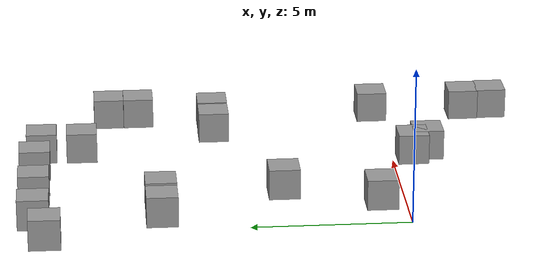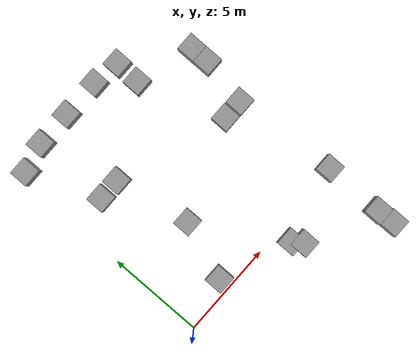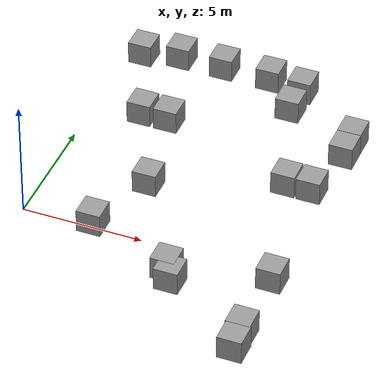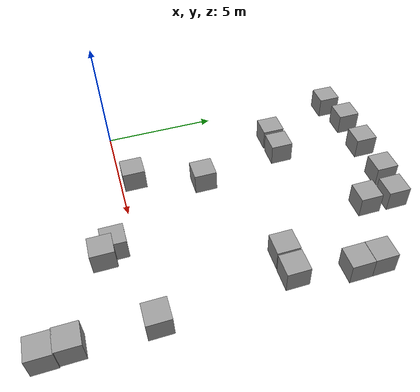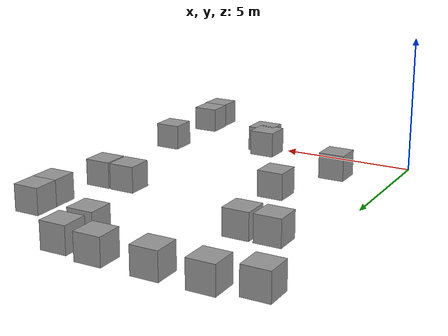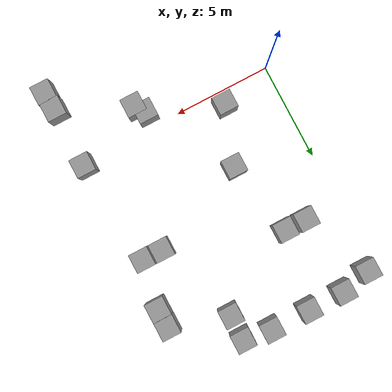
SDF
<sdf version="1.7">
 <model name="21">
  <link name="link_0">
   <inertial>
    <mass>1</mass>
    <inertia>
     <ixx>0.166667</ixx>
     <ixy>0</ixy>
     <ixz>0</ixz>
     <iyy>0.166667</iyy>
     <iyz>0</iyz>
     <izz>0.166667</izz>
    </inertia>
   </inertial>
   <pose>7.34424 10.0959 0 0 -0 0</pose>
   <visual name="visual">
    <geometry><box><size>1 1 1</size></box></geometry>
    <material>
     <lighting>1</lighting>
     <script><uri>file://media/materials/scripts/gazebo.material</uri><name>Gazebo/Grey</name></script>
     <shader type="pixel"/>
    </material>
   </visual>
   <collision name="collision">
    <geometry><box><size>1 1 1</size></box></geometry>
    <surface>
     <friction>
      <ode><mu>1</mu><mu2>1</mu2><fdir1>0 0 0</fdir1><slip1>0</slip1><slip2>0</slip2></ode>
      <torsional>
       <coefficient>1</coefficient>
       <patch_radius>0</patch_radius>
       <surface_radius>0</surface_radius>
       <use_patch_radius>1</use_patch_radius>
       <ode><slip>0</slip></ode>
      </torsional>
     </friction>
     <bounce><restitution_coefficient>0</restitution_coefficient><threshold>1e+06</threshold></bounce>
     <contact>
      <collide_without_contact>0</collide_without_contact>
      <collide_without_contact_bitmask>1</collide_without_contact_bitmask>
      <collide_bitmask>1</collide_bitmask>
      <ode>
       <soft_cfm>0</soft_cfm>
       <soft_erp>0.2</soft_erp>
       <kp>1e+13</kp>
       <kd>1</kd>
       <max_vel>0.01</max_vel>
       <min_depth>0</min_depth>
      </ode>
      <bullet>
       <split_impulse>1</split_impulse>
       <split_impulse_penetration_threshold>-0.01</split_impulse_penetration_threshold>
       <soft_cfm>0</soft_cfm>
       <soft_erp>0.2</soft_erp>
       <kp>1e+13</kp>
       <kd>1</kd>
      </bullet>
     </contact>
    </surface>
   </collision>
  </link>
  <link name="link_1">
   <inertial>
    <mass>1</mass>
    <inertia>
     <ixx>0.166667</ixx>
     <ixy>0</ixy>
     <ixz>0</ixz>
     <iyy>0.166667</iyy>
     <iyz>0</iyz>
     <izz>0.166667</izz>
    </inertia>
   </inertial>
   <pose>10.3682 9.14937 0 0 -0 0</pose>
   <visual name="visual">
    <geometry><box><size>1 1 1</size></box></geometry>
    <material>
     <lighting>1</lighting>
     <script><uri>file://media/materials/scripts/gazebo.material</uri><name>Gazebo/Grey</name></script>
     <shader type="pixel"/>
    </material>
   </visual>
   <collision name="collision">
    <geometry><box><size>1 1 1</size></box></geometry>
    <surface>
     <friction>
      <ode><mu>1</mu><mu2>1</mu2><fdir1>0 0 0</fdir1><slip1>0</slip1><slip2>0</slip2></ode>
      <torsional>
       <coefficient>1</coefficient>
       <patch_radius>0</patch_radius>
       <surface_radius>0</surface_radius>
       <use_patch_radius>1</use_patch_radius>
       <ode><slip>0</slip></ode>
      </torsional>
     </friction>
     <bounce><restitution_coefficient>0</restitution_coefficient><threshold>1e+06</threshold></bounce>
     <contact>
      <collide_without_contact>0</collide_without_contact>
      <collide_without_contact_bitmask>1</collide_without_contact_bitmask>
      <collide_bitmask>1</collide_bitmask>
      <ode>
       <soft_cfm>0</soft_cfm>
       <soft_erp>0.2</soft_erp>
       <kp>1e+13</kp>
       <kd>1</kd>
       <max_vel>0.01</max_vel>
       <min_depth>0</min_depth>
      </ode>
      <bullet>
       <split_impulse>1</split_impulse>
       <split_impulse_penetration_threshold>-0.01</split_impulse_penetration_threshold>
       <soft_cfm>0</soft_cfm>
       <soft_erp>0.2</soft_erp>
       <kp>1e+13</kp>
       <kd>1</kd>
      </bullet>
     </contact>
    </surface>
   </collision>
  </link>
  <link name="link_2">
   <inertial>
    <mass>1</mass>
    <inertia>
     <ixx>0.166667</ixx>
     <ixy>0</ixy>
     <ixz>0</ixz>
     <iyy>0.166667</iyy>
     <iyz>0</iyz>
     <izz>0.166667</izz>
    </inertia>
   </inertial>
   <pose>10.3714 8.14523 0 0 -0 0</pose>
   <visual name="visual">
    <geometry><box><size>1 1 1</size></box></geometry>
    <material>
     <lighting>1</lighting>
     <script><uri>file://media/materials/scripts/gazebo.material</uri><name>Gazebo/Grey</name></script>
     <shader type="pixel"/>
    </material>
   </visual>
   <collision name="collision">
    <geometry><box><size>1 1 1</size></box></geometry>
    <surface>
     <friction>
      <ode><mu>1</mu><mu2>1</mu2><fdir1>0 0 0</fdir1><slip1>0</slip1><slip2>0</slip2></ode>
      <torsional>
       <coefficient>1</coefficient>
       <patch_radius>0</patch_radius>
       <surface_radius>0</surface_radius>
       <use_patch_radius>1</use_patch_radius>
       <ode><slip>0</slip></ode>
      </torsional>
     </friction>
     <bounce><restitution_coefficient>0</restitution_coefficient><threshold>1e+06</threshold></bounce>
     <contact>
      <collide_without_contact>0</collide_without_contact>
      <collide_without_contact_bitmask>1</collide_without_contact_bitmask>
      <collide_bitmask>1</collide_bitmask>
      <ode>
       <soft_cfm>0</soft_cfm>
       <soft_erp>0.2</soft_erp>
       <kp>1e+13</kp>
       <kd>1</kd>
       <max_vel>0.01</max_vel>
       <min_depth>0</min_depth>
      </ode>
      <bullet>
       <split_impulse>1</split_impulse>
       <split_impulse_penetration_threshold>-0.01</split_impulse_penetration_threshold>
       <soft_cfm>0</soft_cfm>
       <soft_erp>0.2</soft_erp>
       <kp>1e+13</kp>
       <kd>1</kd>
      </bullet>
     </contact>
    </surface>
   </collision>
  </link>
  <link name="link_3">
   <inertial>
    <mass>1</mass>
    <inertia>
     <ixx>0.166667</ixx>
     <ixy>0</ixy>
     <ixz>0</ixz>
     <iyy>0.166667</iyy>
     <iyz>0</iyz>
     <izz>0.166667</izz>
    </inertia>
   </inertial>
   <pose>9.92416 5.64013 0 0 -0 0</pose>
   <visual name="visual">
    <geometry><box><size>1 1 1</size></box></geometry>
    <material>
     <lighting>1</lighting>
     <script><uri>file://media/materials/scripts/gazebo.material</uri><name>Gazebo/Grey</name></script>
     <shader type="pixel"/>
    </material>
   </visual>
   <collision name="collision">
    <geometry><box><size>1 1 1</size></box></geometry>
    <surface>
     <friction>
      <ode><mu>1</mu><mu2>1</mu2><fdir1>0 0 0</fdir1><slip1>0</slip1><slip2>0</slip2></ode>
      <torsional>
       <coefficient>1</coefficient>
       <patch_radius>0</patch_radius>
       <surface_radius>0</surface_radius>
       <use_patch_radius>1</use_patch_radius>
       <ode><slip>0</slip></ode>
      </torsional>
     </friction>
     <bounce><restitution_coefficient>0</restitution_coefficient><threshold>1e+06</threshold></bounce>
     <contact>
      <collide_without_contact>0</collide_without_contact>
      <collide_without_contact_bitmask>1</collide_without_contact_bitmask>
      <collide_bitmask>1</collide_bitmask>
      <ode>
       <soft_cfm>0</soft_cfm>
       <soft_erp>0.2</soft_erp>
       <kp>1e+13</kp>
       <kd>1</kd>
       <max_vel>0.01</max_vel>
       <min_depth>0</min_depth>
      </ode>
      <bullet>
       <split_impulse>1</split_impulse>
       <split_impulse_penetration_threshold>-0.01</split_impulse_penetration_threshold>
       <soft_cfm>0</soft_cfm>
       <soft_erp>0.2</soft_erp>
       <kp>1e+13</kp>
       <kd>1</kd>
      </bullet>
     </contact>
    </surface>
   </collision>
  </link>
  <link name="link_37">
   <inertial>
    <mass>1</mass>
    <inertia>
     <ixx>0.166667</ixx>
     <ixy>0</ixy>
     <ixz>0</ixz>
     <iyy>0.166667</iyy>
     <iyz>0</iyz>
     <izz>0.166667</izz>
    </inertia>
   </inertial>
   <pose>10.3566 -3.02952 0 0 -0 0</pose>
   <visual name="visual">
    <geometry><box><size>1 1 1</size></box></geometry>
    <material>
     <lighting>1</lighting>
     <script><uri>file://media/materials/scripts/gazebo.material</uri><name>Gazebo/Grey</name></script>
     <shader type="pixel"/>
    </material>
   </visual>
   <collision name="collision">
    <geometry><box><size>1 1 1</size></box></geometry>
    <surface>
     <friction>
      <ode><mu>1</mu><mu2>1</mu2><fdir1>0 0 0</fdir1><slip1>0</slip1><slip2>0</slip2></ode>
      <torsional>
       <coefficient>1</coefficient>
       <patch_radius>0</patch_radius>
       <surface_radius>0</surface_radius>
       <use_patch_radius>1</use_patch_radius>
       <ode><slip>0</slip></ode>
      </torsional>
     </friction>
     <bounce><restitution_coefficient>0</restitution_coefficient><threshold>1e+06</threshold></bounce>
     <contact>
      <collide_without_contact>0</collide_without_contact>
      <collide_without_contact_bitmask>1</collide_without_contact_bitmask>
      <collide_bitmask>1</collide_bitmask>
      <ode>
       <soft_cfm>0</soft_cfm>
       <soft_erp>0.2</soft_erp>
       <kp>1e+13</kp>
       <kd>1</kd>
       <max_vel>0.01</max_vel>
       <min_depth>0</min_depth>
      </ode>
      <bullet>
       <split_impulse>1</split_impulse>
       <split_impulse_penetration_threshold>-0.01</split_impulse_penetration_threshold>
       <soft_cfm>0</soft_cfm>
       <soft_erp>0.2</soft_erp>
       <kp>1e+13</kp>
       <kd>1</kd>
      </bullet>
     </contact>
    </surface>
   </collision>
  </link>
  <link name="link_38">
   <inertial>
    <mass>1</mass>
    <inertia>
     <ixx>0.166667</ixx>
     <ixy>0</ixy>
     <ixz>0</ixz>
     <iyy>0.166667</iyy>
     <iyz>0</iyz>
     <izz>0.166667</izz>
    </inertia>
   </inertial>
   <pose>10.4017 -3.99565 0 0 -0 0</pose>
   <visual name="visual">
    <geometry><box><size>1 1 1</size></box></geometry>
    <material>
     <lighting>1</lighting>
     <script><uri>file://media/materials/scripts/gazebo.material</uri><name>Gazebo/Grey</name></script>
     <shader type="pixel"/>
    </material>
   </visual>
   <collision name="collision">
    <geometry><box><size>1 1 1</size></box></geometry>
    <surface>
     <friction>
      <ode><mu>1</mu><mu2>1</mu2><fdir1>0 0 0</fdir1><slip1>0</slip1><slip2>0</slip2></ode>
      <torsional>
       <coefficient>1</coefficient>
       <patch_radius>0</patch_radius>
       <surface_radius>0</surface_radius>
       <use_patch_radius>1</use_patch_radius>
       <ode><slip>0</slip></ode>
      </torsional>
     </friction>
     <bounce><restitution_coefficient>0</restitution_coefficient><threshold>1e+06</threshold></bounce>
     <contact>
      <collide_without_contact>0</collide_without_contact>
      <collide_without_contact_bitmask>1</collide_without_contact_bitmask>
      <collide_bitmask>1</collide_bitmask>
      <ode>
       <soft_cfm>0</soft_cfm>
       <soft_erp>0.2</soft_erp>
       <kp>1e+13</kp>
       <kd>1</kd>
       <max_vel>0.01</max_vel>
       <min_depth>0</min_depth>
      </ode>
      <bullet>
       <split_impulse>1</split_impulse>
       <split_impulse_penetration_threshold>-0.01</split_impulse_penetration_threshold>
       <soft_cfm>0</soft_cfm>
       <soft_erp>0.2</soft_erp>
       <kp>1e+13</kp>
       <kd>1</kd>
      </bullet>
     </contact>
    </surface>
   </collision>
  </link>
  <link name="link_4">
   <inertial>
    <mass>1</mass>
    <inertia>
     <ixx>0.166667</ixx>
     <ixy>0</ixy>
     <ixz>0</ixz>
     <iyy>0.166667</iyy>
     <iyz>0</iyz>
     <izz>0.166667</izz>
    </inertia>
   </inertial>
   <pose>8.85361 5.64902 0 0 -0 0</pose>
   <visual name="visual">
    <geometry><box><size>1 1 1</size></box></geometry>
    <material>
     <lighting>1</lighting>
     <script><uri>file://media/materials/scripts/gazebo.material</uri><name>Gazebo/Grey</name></script>
     <shader type="pixel"/>
    </material>
   </visual>
   <collision name="collision">
    <geometry><box><size>1 1 1</size></box></geometry>
    <surface>
     <friction>
      <ode><mu>1</mu><mu2>1</mu2><fdir1>0 0 0</fdir1><slip1>0</slip1><slip2>0</slip2></ode>
      <torsional>
       <coefficient>1</coefficient>
       <patch_radius>0</patch_radius>
       <surface_radius>0</surface_radius>
       <use_patch_radius>1</use_patch_radius>
       <ode><slip>0</slip></ode>
      </torsional>
     </friction>
     <bounce><restitution_coefficient>0</restitution_coefficient><threshold>1e+06</threshold></bounce>
     <contact>
      <collide_without_contact>0</collide_without_contact>
      <collide_without_contact_bitmask>1</collide_without_contact_bitmask>
      <collide_bitmask>1</collide_bitmask>
      <ode>
       <soft_cfm>0</soft_cfm>
       <soft_erp>0.2</soft_erp>
       <kp>1e+13</kp>
       <kd>1</kd>
       <max_vel>0.01</max_vel>
       <min_depth>0</min_depth>
      </ode>
      <bullet>
       <split_impulse>1</split_impulse>
       <split_impulse_penetration_threshold>-0.01</split_impulse_penetration_threshold>
       <soft_cfm>0</soft_cfm>
       <soft_erp>0.2</soft_erp>
       <kp>1e+13</kp>
       <kd>1</kd>
      </bullet>
     </contact>
    </surface>
   </collision>
  </link>
  <link name="link_42">
   <inertial>
    <mass>1</mass>
    <inertia>
     <ixx>0.166667</ixx>
     <ixy>0</ixy>
     <ixz>0</ixz>
     <iyy>0.166667</iyy>
     <iyz>0</iyz>
     <izz>0.166667</izz>
    </inertia>
   </inertial>
   <pose>6.39257 -0.820262 0 0 -0 0</pose>
   <visual name="visual">
    <geometry><box><size>1 1 1</size></box></geometry>
    <material>
     <lighting>1</lighting>
     <script><uri>file://media/materials/scripts/gazebo.material</uri><name>Gazebo/Grey</name></script>
     <shader type="pixel"/>
    </material>
   </visual>
   <collision name="collision">
    <geometry><box><size>1 1 1</size></box></geometry>
    <surface>
     <friction>
      <ode><mu>1</mu><mu2>1</mu2><fdir1>0 0 0</fdir1><slip1>0</slip1><slip2>0</slip2></ode>
      <torsional>
       <coefficient>1</coefficient>
       <patch_radius>0</patch_radius>
       <surface_radius>0</surface_radius>
       <use_patch_radius>1</use_patch_radius>
       <ode><slip>0</slip></ode>
      </torsional>
     </friction>
     <bounce><restitution_coefficient>0</restitution_coefficient><threshold>1e+06</threshold></bounce>
     <contact>
      <collide_without_contact>0</collide_without_contact>
      <collide_without_contact_bitmask>1</collide_without_contact_bitmask>
      <collide_bitmask>1</collide_bitmask>
      <ode>
       <soft_cfm>0</soft_cfm>
       <soft_erp>0.2</soft_erp>
       <kp>1e+13</kp>
       <kd>1</kd>
       <max_vel>0.01</max_vel>
       <min_depth>0</min_depth>
      </ode>
      <bullet>
       <split_impulse>1</split_impulse>
       <split_impulse_penetration_threshold>-0.01</split_impulse_penetration_threshold>
       <soft_cfm>0</soft_cfm>
       <soft_erp>0.2</soft_erp>
       <kp>1e+13</kp>
       <kd>1</kd>
      </bullet>
     </contact>
    </surface>
   </collision>
  </link>
  <link name="link_43">
   <inertial>
    <mass>1</mass>
    <inertia>
     <ixx>0.166667</ixx>
     <ixy>0</ixy>
     <ixz>0</ixz>
     <iyy>0.166667</iyy>
     <iyz>0</iyz>
     <izz>0.166667</izz>
    </inertia>
   </inertial>
   <pose>6.75375 -1.35296 0 0 -0 0</pose>
   <visual name="visual">
    <geometry><box><size>1 1 1</size></box></geometry>
    <material>
     <lighting>1</lighting>
     <script><uri>file://media/materials/scripts/gazebo.material</uri><name>Gazebo/Grey</name></script>
     <shader type="pixel"/>
    </material>
   </visual>
   <collision name="collision">
    <geometry><box><size>1 1 1</size></box></geometry>
    <surface>
     <friction>
      <ode><mu>1</mu><mu2>1</mu2><fdir1>0 0 0</fdir1><slip1>0</slip1><slip2>0</slip2></ode>
      <torsional>
       <coefficient>1</coefficient>
       <patch_radius>0</patch_radius>
       <surface_radius>0</surface_radius>
       <use_patch_radius>1</use_patch_radius>
       <ode><slip>0</slip></ode>
      </torsional>
     </friction>
     <bounce><restitution_coefficient>0</restitution_coefficient><threshold>1e+06</threshold></bounce>
     <contact>
      <collide_without_contact>0</collide_without_contact>
      <collide_without_contact_bitmask>1</collide_without_contact_bitmask>
      <collide_bitmask>1</collide_bitmask>
      <ode>
       <soft_cfm>0</soft_cfm>
       <soft_erp>0.2</soft_erp>
       <kp>1e+13</kp>
       <kd>1</kd>
       <max_vel>0.01</max_vel>
       <min_depth>0</min_depth>
      </ode>
      <bullet>
       <split_impulse>1</split_impulse>
       <split_impulse_penetration_threshold>-0.01</split_impulse_penetration_threshold>
       <soft_cfm>0</soft_cfm>
       <soft_erp>0.2</soft_erp>
       <kp>1e+13</kp>
       <kd>1</kd>
      </bullet>
     </contact>
    </surface>
   </collision>
  </link>
  <link name="link_44">
   <inertial>
    <mass>1</mass>
    <inertia>
     <ixx>0.166667</ixx>
     <ixy>0</ixy>
     <ixz>0</ixz>
     <iyy>0.166667</iyy>
     <iyz>0</iyz>
     <izz>0.166667</izz>
    </inertia>
   </inertial>
   <pose>1.85142 7.64908 0 0 -0 0</pose>
   <visual name="visual">
    <geometry><box><size>1 1 1</size></box></geometry>
    <material>
     <lighting>1</lighting>
     <script><uri>file://media/materials/scripts/gazebo.material</uri><name>Gazebo/Grey</name></script>
     <shader type="pixel"/>
    </material>
   </visual>
   <collision name="collision">
    <geometry><box><size>1 1 1</size></box></geometry>
    <surface>
     <friction>
      <ode><mu>1</mu><mu2>1</mu2><fdir1>0 0 0</fdir1><slip1>0</slip1><slip2>0</slip2></ode>
      <torsional>
       <coefficient>1</coefficient>
       <patch_radius>0</patch_radius>
       <surface_radius>0</surface_radius>
       <use_patch_radius>1</use_patch_radius>
       <ode><slip>0</slip></ode>
      </torsional>
     </friction>
     <bounce><restitution_coefficient>0</restitution_coefficient><threshold>1e+06</threshold></bounce>
     <contact>
      <collide_without_contact>0</collide_without_contact>
      <collide_without_contact_bitmask>1</collide_without_contact_bitmask>
      <collide_bitmask>1</collide_bitmask>
      <ode>
       <soft_cfm>0</soft_cfm>
       <soft_erp>0.2</soft_erp>
       <kp>1e+13</kp>
       <kd>1</kd>
       <max_vel>0.01</max_vel>
       <min_depth>0</min_depth>
      </ode>
      <bullet>
       <split_impulse>1</split_impulse>
       <split_impulse_penetration_threshold>-0.01</split_impulse_penetration_threshold>
       <soft_cfm>0</soft_cfm>
       <soft_erp>0.2</soft_erp>
       <kp>1e+13</kp>
       <kd>1</kd>
      </bullet>
     </contact>
    </surface>
   </collision>
  </link>
  <link name="link_45">
   <inertial>
    <mass>1</mass>
    <inertia>
     <ixx>0.166667</ixx>
     <ixy>0</ixy>
     <ixz>0</ixz>
     <iyy>0.166667</iyy>
     <iyz>0</iyz>
     <izz>0.166667</izz>
    </inertia>
   </inertial>
   <pose>3.00641 7.64142 0 0 -0 0</pose>
   <visual name="visual">
    <geometry><box><size>1 1 1</size></box></geometry>
    <material>
     <lighting>1</lighting>
     <script><uri>file://media/materials/scripts/gazebo.material</uri><name>Gazebo/Grey</name></script>
     <shader type="pixel"/>
    </material>
   </visual>
   <collision name="collision">
    <geometry><box><size>1 1 1</size></box></geometry>
    <surface>
     <friction>
      <ode><mu>1</mu><mu2>1</mu2><fdir1>0 0 0</fdir1><slip1>0</slip1><slip2>0</slip2></ode>
      <torsional>
       <coefficient>1</coefficient>
       <patch_radius>0</patch_radius>
       <surface_radius>0</surface_radius>
       <use_patch_radius>1</use_patch_radius>
       <ode><slip>0</slip></ode>
      </torsional>
     </friction>
     <bounce><restitution_coefficient>0</restitution_coefficient><threshold>1e+06</threshold></bounce>
     <contact>
      <collide_without_contact>0</collide_without_contact>
      <collide_without_contact_bitmask>1</collide_without_contact_bitmask>
      <collide_bitmask>1</collide_bitmask>
      <ode>
       <soft_cfm>0</soft_cfm>
       <soft_erp>0.2</soft_erp>
       <kp>1e+13</kp>
       <kd>1</kd>
       <max_vel>0.01</max_vel>
       <min_depth>0</min_depth>
      </ode>
      <bullet>
       <split_impulse>1</split_impulse>
       <split_impulse_penetration_threshold>-0.01</split_impulse_penetration_threshold>
       <soft_cfm>0</soft_cfm>
       <soft_erp>0.2</soft_erp>
       <kp>1e+13</kp>
       <kd>1</kd>
      </bullet>
     </contact>
    </surface>
   </collision>
  </link>
  <link name="link_46">
   <inertial>
    <mass>1</mass>
    <inertia>
     <ixx>0.166667</ixx>
     <ixy>0</ixy>
     <ixz>0</ixz>
     <iyy>0.166667</iyy>
     <iyz>0</iyz>
     <izz>0.166667</izz>
    </inertia>
   </inertial>
   <pose>3.7604 3.67416 0 0 -0 0</pose>
   <visual name="visual">
    <geometry><box><size>1 1 1</size></box></geometry>
    <material>
     <lighting>1</lighting>
     <script><uri>file://media/materials/scripts/gazebo.material</uri><name>Gazebo/Grey</name></script>
     <shader type="pixel"/>
    </material>
   </visual>
   <collision name="collision">
    <geometry><box><size>1 1 1</size></box></geometry>
    <surface>
     <friction>
      <ode><mu>1</mu><mu2>1</mu2><fdir1>0 0 0</fdir1><slip1>0</slip1><slip2>0</slip2></ode>
      <torsional>
       <coefficient>1</coefficient>
       <patch_radius>0</patch_radius>
       <surface_radius>0</surface_radius>
       <use_patch_radius>1</use_patch_radius>
       <ode><slip>0</slip></ode>
      </torsional>
     </friction>
     <bounce><restitution_coefficient>0</restitution_coefficient><threshold>1e+06</threshold></bounce>
     <contact>
      <collide_without_contact>0</collide_without_contact>
      <collide_without_contact_bitmask>1</collide_without_contact_bitmask>
      <collide_bitmask>1</collide_bitmask>
      <ode>
       <soft_cfm>0</soft_cfm>
       <soft_erp>0.2</soft_erp>
       <kp>1e+13</kp>
       <kd>1</kd>
       <max_vel>0.01</max_vel>
       <min_depth>0</min_depth>
      </ode>
      <bullet>
       <split_impulse>1</split_impulse>
       <split_impulse_penetration_threshold>-0.01</split_impulse_penetration_threshold>
       <soft_cfm>0</soft_cfm>
       <soft_erp>0.2</soft_erp>
       <kp>1e+13</kp>
       <kd>1</kd>
      </bullet>
     </contact>
    </surface>
   </collision>
  </link>
  <link name="link_47">
   <inertial>
    <mass>1</mass>
    <inertia>
     <ixx>0.166667</ixx>
     <ixy>0</ixy>
     <ixz>0</ixz>
     <iyy>0.166667</iyy>
     <iyz>0</iyz>
     <izz>0.166667</izz>
    </inertia>
   </inertial>
   <pose>2.6811 0.643905 0 0 -0 0</pose>
   <visual name="visual">
    <geometry><box><size>1 1 1</size></box></geometry>
    <material>
     <lighting>1</lighting>
     <script><uri>file://media/materials/scripts/gazebo.material</uri><name>Gazebo/Grey</name></script>
     <shader type="pixel"/>
    </material>
   </visual>
   <collision name="collision">
    <geometry><box><size>1 1 1</size></box></geometry>
    <surface>
     <friction>
      <ode><mu>1</mu><mu2>1</mu2><fdir1>0 0 0</fdir1><slip1>0</slip1><slip2>0</slip2></ode>
      <torsional>
       <coefficient>1</coefficient>
       <patch_radius>0</patch_radius>
       <surface_radius>0</surface_radius>
       <use_patch_radius>1</use_patch_radius>
       <ode><slip>0</slip></ode>
      </torsional>
     </friction>
     <bounce><restitution_coefficient>0</restitution_coefficient><threshold>1e+06</threshold></bounce>
     <contact>
      <collide_without_contact>0</collide_without_contact>
      <collide_without_contact_bitmask>1</collide_without_contact_bitmask>
      <collide_bitmask>1</collide_bitmask>
      <ode>
       <soft_cfm>0</soft_cfm>
       <soft_erp>0.2</soft_erp>
       <kp>1e+13</kp>
       <kd>1</kd>
       <max_vel>0.01</max_vel>
       <min_depth>0</min_depth>
      </ode>
      <bullet>
       <split_impulse>1</split_impulse>
       <split_impulse_penetration_threshold>-0.01</split_impulse_penetration_threshold>
       <soft_cfm>0</soft_cfm>
       <soft_erp>0.2</soft_erp>
       <kp>1e+13</kp>
       <kd>1</kd>
      </bullet>
     </contact>
    </surface>
   </collision>
  </link>
  <link name="link_5">
   <inertial>
    <mass>1</mass>
    <inertia>
     <ixx>0.166667</ixx>
     <ixy>0</ixy>
     <ixz>0</ixz>
     <iyy>0.166667</iyy>
     <iyz>0</iyz>
     <izz>0.166667</izz>
    </inertia>
   </inertial>
   <pose>7.37733 11.4183 0 0 -0 0</pose>
   <visual name="visual">
    <geometry><box><size>1 1 1</size></box></geometry>
    <material>
     <lighting>1</lighting>
     <script><uri>file://media/materials/scripts/gazebo.material</uri><name>Gazebo/Grey</name></script>
     <shader type="pixel"/>
    </material>
   </visual>
   <collision name="collision">
    <geometry><box><size>1 1 1</size></box></geometry>
    <surface>
     <friction>
      <ode><mu>1</mu><mu2>1</mu2><fdir1>0 0 0</fdir1><slip1>0</slip1><slip2>0</slip2></ode>
      <torsional>
       <coefficient>1</coefficient>
       <patch_radius>0</patch_radius>
       <surface_radius>0</surface_radius>
       <use_patch_radius>1</use_patch_radius>
       <ode><slip>0</slip></ode>
      </torsional>
     </friction>
     <bounce><restitution_coefficient>0</restitution_coefficient><threshold>1e+06</threshold></bounce>
     <contact>
      <collide_without_contact>0</collide_without_contact>
      <collide_without_contact_bitmask>1</collide_without_contact_bitmask>
      <collide_bitmask>1</collide_bitmask>
      <ode>
       <soft_cfm>0</soft_cfm>
       <soft_erp>0.2</soft_erp>
       <kp>1e+13</kp>
       <kd>1</kd>
       <max_vel>0.01</max_vel>
       <min_depth>0</min_depth>
      </ode>
      <bullet>
       <split_impulse>1</split_impulse>
       <split_impulse_penetration_threshold>-0.01</split_impulse_penetration_threshold>
       <soft_cfm>0</soft_cfm>
       <soft_erp>0.2</soft_erp>
       <kp>1e+13</kp>
       <kd>1</kd>
      </bullet>
     </contact>
    </surface>
   </collision>
  </link>
  <link name="link_56">
   <inertial>
    <mass>1</mass>
    <inertia>
     <ixx>0.166667</ixx>
     <ixy>0</ixy>
     <ixz>0</ixz>
     <iyy>0.166667</iyy>
     <iyz>0</iyz>
     <izz>0.166667</izz>
    </inertia>
   </inertial>
   <pose>10.3585 0.131628 0 0 -0 0</pose>
   <visual name="visual">
    <geometry><box><size>1 1 1</size></box></geometry>
    <material>
     <lighting>1</lighting>
     <script><uri>file://media/materials/scripts/gazebo.material</uri><name>Gazebo/Grey</name></script>
     <shader type="pixel"/>
    </material>
   </visual>
   <collision name="collision">
    <geometry><box><size>1 1 1</size></box></geometry>
    <surface>
     <friction>
      <ode><mu>1</mu><mu2>1</mu2><fdir1>0 0 0</fdir1><slip1>0</slip1><slip2>0</slip2></ode>
      <torsional>
       <coefficient>1</coefficient>
       <patch_radius>0</patch_radius>
       <surface_radius>0</surface_radius>
       <use_patch_radius>1</use_patch_radius>
       <ode><slip>0</slip></ode>
      </torsional>
     </friction>
     <bounce><restitution_coefficient>0</restitution_coefficient><threshold>1e+06</threshold></bounce>
     <contact>
      <collide_without_contact>0</collide_without_contact>
      <collide_without_contact_bitmask>1</collide_without_contact_bitmask>
      <collide_bitmask>1</collide_bitmask>
      <ode>
       <soft_cfm>0</soft_cfm>
       <soft_erp>0.2</soft_erp>
       <kp>1e+13</kp>
       <kd>1</kd>
       <max_vel>0.01</max_vel>
       <min_depth>0</min_depth>
      </ode>
      <bullet>
       <split_impulse>1</split_impulse>
       <split_impulse_penetration_threshold>-0.01</split_impulse_penetration_threshold>
       <soft_cfm>0</soft_cfm>
       <soft_erp>0.2</soft_erp>
       <kp>1e+13</kp>
       <kd>1</kd>
      </bullet>
     </contact>
    </surface>
   </collision>
  </link>
  <link name="link_6">
   <inertial>
    <mass>1</mass>
    <inertia>
     <ixx>0.166667</ixx>
     <ixy>0</ixy>
     <ixz>0</ixz>
     <iyy>0.166667</iyy>
     <iyz>0</iyz>
     <izz>0.166667</izz>
    </inertia>
   </inertial>
   <pose>5.89636 11.6413 0 0 -0 0</pose>
   <visual name="visual">
    <geometry><box><size>1 1 1</size></box></geometry>
    <material>
     <lighting>1</lighting>
     <script><uri>file://media/materials/scripts/gazebo.material</uri><name>Gazebo/Grey</name></script>
     <shader type="pixel"/>
    </material>
   </visual>
   <collision name="collision">
    <geometry><box><size>1 1 1</size></box></geometry>
    <surface>
     <friction>
      <ode><mu>1</mu><mu2>1</mu2><fdir1>0 0 0</fdir1><slip1>0</slip1><slip2>0</slip2></ode>
      <torsional>
       <coefficient>1</coefficient>
       <patch_radius>0</patch_radius>
       <surface_radius>0</surface_radius>
       <use_patch_radius>1</use_patch_radius>
       <ode><slip>0</slip></ode>
      </torsional>
     </friction>
     <bounce><restitution_coefficient>0</restitution_coefficient><threshold>1e+06</threshold></bounce>
     <contact>
      <collide_without_contact>0</collide_without_contact>
      <collide_without_contact_bitmask>1</collide_without_contact_bitmask>
      <collide_bitmask>1</collide_bitmask>
      <ode>
       <soft_cfm>0</soft_cfm>
       <soft_erp>0.2</soft_erp>
       <kp>1e+13</kp>
       <kd>1</kd>
       <max_vel>0.01</max_vel>
       <min_depth>0</min_depth>
      </ode>
      <bullet>
       <split_impulse>1</split_impulse>
       <split_impulse_penetration_threshold>-0.01</split_impulse_penetration_threshold>
       <soft_cfm>0</soft_cfm>
       <soft_erp>0.2</soft_erp>
       <kp>1e+13</kp>
       <kd>1</kd>
      </bullet>
     </contact>
    </surface>
   </collision>
  </link>
  <link name="link_7">
   <inertial>
    <mass>1</mass>
    <inertia>
     <ixx>0.166667</ixx>
     <ixy>0</ixy>
     <ixz>0</ixz>
     <iyy>0.166667</iyy>
     <iyz>0</iyz>
     <izz>0.166667</izz>
    </inertia>
   </inertial>
   <pose>3.83361 11.6568 0 0 -0 0</pose>
   <visual name="visual">
    <geometry><box><size>1 1 1</size></box></geometry>
    <material>
     <lighting>1</lighting>
     <script><uri>file://media/materials/scripts/gazebo.material</uri><name>Gazebo/Grey</name></script>
     <shader type="pixel"/>
    </material>
   </visual>
   <collision name="collision">
    <geometry><box><size>1 1 1</size></box></geometry>
    <surface>
     <friction>
      <ode><mu>1</mu><mu2>1</mu2><fdir1>0 0 0</fdir1><slip1>0</slip1><slip2>0</slip2></ode>
      <torsional>
       <coefficient>1</coefficient>
       <patch_radius>0</patch_radius>
       <surface_radius>0</surface_radius>
       <use_patch_radius>1</use_patch_radius>
       <ode><slip>0</slip></ode>
      </torsional>
     </friction>
     <bounce><restitution_coefficient>0</restitution_coefficient><threshold>1e+06</threshold></bounce>
     <contact>
      <collide_without_contact>0</collide_without_contact>
      <collide_without_contact_bitmask>1</collide_without_contact_bitmask>
      <collide_bitmask>1</collide_bitmask>
      <ode>
       <soft_cfm>0</soft_cfm>
       <soft_erp>0.2</soft_erp>
       <kp>1e+13</kp>
       <kd>1</kd>
       <max_vel>0.01</max_vel>
       <min_depth>0</min_depth>
      </ode>
      <bullet>
       <split_impulse>1</split_impulse>
       <split_impulse_penetration_threshold>-0.01</split_impulse_penetration_threshold>
       <soft_cfm>0</soft_cfm>
       <soft_erp>0.2</soft_erp>
       <kp>1e+13</kp>
       <kd>1</kd>
      </bullet>
     </contact>
    </surface>
   </collision>
  </link>
  <link name="link_8">
   <inertial>
    <mass>1</mass>
    <inertia>
     <ixx>0.166667</ixx>
     <ixy>0</ixy>
     <ixz>0</ixz>
     <iyy>0.166667</iyy>
     <iyz>0</iyz>
     <izz>0.166667</izz>
    </inertia>
   </inertial>
   <pose>1.91947 11.6665 0 0 -0 0</pose>
   <visual name="visual">
    <geometry><box><size>1 1 1</size></box></geometry>
    <material>
     <lighting>1</lighting>
     <script><uri>file://media/materials/scripts/gazebo.material</uri><name>Gazebo/Grey</name></script>
     <shader type="pixel"/>
    </material>
   </visual>
   <collision name="collision">
    <geometry><box><size>1 1 1</size></box></geometry>
    <surface>
     <friction>
      <ode><mu>1</mu><mu2>1</mu2><fdir1>0 0 0</fdir1><slip1>0</slip1><slip2>0</slip2></ode>
      <torsional>
       <coefficient>1</coefficient>
       <patch_radius>0</patch_radius>
       <surface_radius>0</surface_radius>
       <use_patch_radius>1</use_patch_radius>
       <ode><slip>0</slip></ode>
      </torsional>
     </friction>
     <bounce><restitution_coefficient>0</restitution_coefficient><threshold>1e+06</threshold></bounce>
     <contact>
      <collide_without_contact>0</collide_without_contact>
      <collide_without_contact_bitmask>1</collide_without_contact_bitmask>
      <collide_bitmask>1</collide_bitmask>
      <ode>
       <soft_cfm>0</soft_cfm>
       <soft_erp>0.2</soft_erp>
       <kp>1e+13</kp>
       <kd>1</kd>
       <max_vel>0.01</max_vel>
       <min_depth>0</min_depth>
      </ode>
      <bullet>
       <split_impulse>1</split_impulse>
       <split_impulse_penetration_threshold>-0.01</split_impulse_penetration_threshold>
       <soft_cfm>0</soft_cfm>
       <soft_erp>0.2</soft_erp>
       <kp>1e+13</kp>
       <kd>1</kd>
      </bullet>
     </contact>
    </surface>
   </collision>
  </link>
  <link name="link_9">
   <inertial>
    <mass>1</mass>
    <inertia>
     <ixx>0.166667</ixx>
     <ixy>0</ixy>
     <ixz>0</ixz>
     <iyy>0.166667</iyy>
     <iyz>0</iyz>
     <izz>0.166667</izz>
    </inertia>
   </inertial>
   <pose>0.368559 11.3056 0 0 -0 0</pose>
   <visual name="visual">
    <geometry><box><size>1 1 1</size></box></geometry>
    <material>
     <lighting>1</lighting>
     <script><uri>file://media/materials/scripts/gazebo.material</uri><name>Gazebo/Grey</name></script>
     <shader type="pixel"/>
    </material>
   </visual>
   <collision name="collision">
    <geometry><box><size>1 1 1</size></box></geometry>
    <surface>
     <friction>
      <ode><mu>1</mu><mu2>1</mu2><fdir1>0 0 0</fdir1><slip1>0</slip1><slip2>0</slip2></ode>
      <torsional>
       <coefficient>1</coefficient>
       <patch_radius>0</patch_radius>
       <surface_radius>0</surface_radius>
       <use_patch_radius>1</use_patch_radius>
       <ode><slip>0</slip></ode>
      </torsional>
     </friction>
     <bounce><restitution_coefficient>0</restitution_coefficient><threshold>1e+06</threshold></bounce>
     <contact>
      <collide_without_contact>0</collide_without_contact>
      <collide_without_contact_bitmask>1</collide_without_contact_bitmask>
      <collide_bitmask>1</collide_bitmask>
      <ode>
       <soft_cfm>0</soft_cfm>
       <soft_erp>0.2</soft_erp>
       <kp>1e+13</kp>
       <kd>1</kd>
       <max_vel>0.01</max_vel>
       <min_depth>0</min_depth>
      </ode>
      <bullet>
       <split_impulse>1</split_impulse>
       <split_impulse_penetration_threshold>-0.01</split_impulse_penetration_threshold>
       <soft_cfm>0</soft_cfm>
       <soft_erp>0.2</soft_erp>
       <kp>1e+13</kp>
       <kd>1</kd>
      </bullet>
     </contact>
    </surface>
   </collision>
  </link>
  <static>0</static>
 </model>
</sdf>
